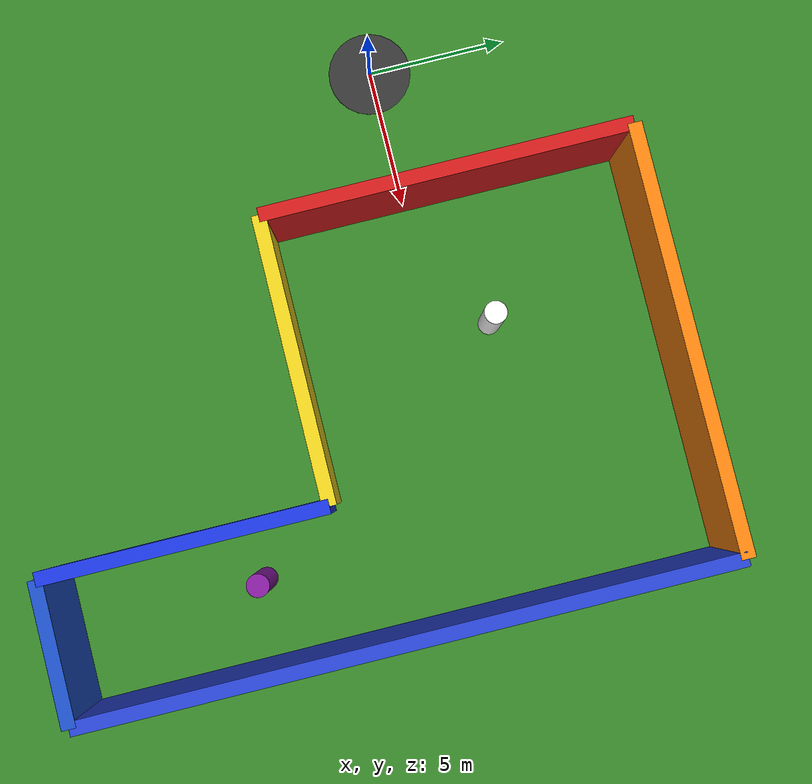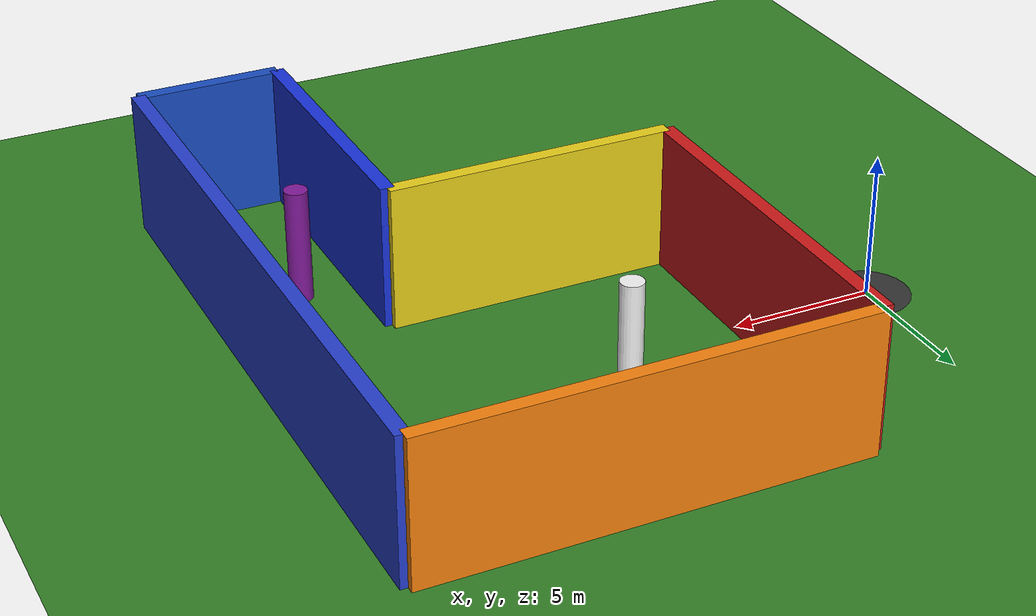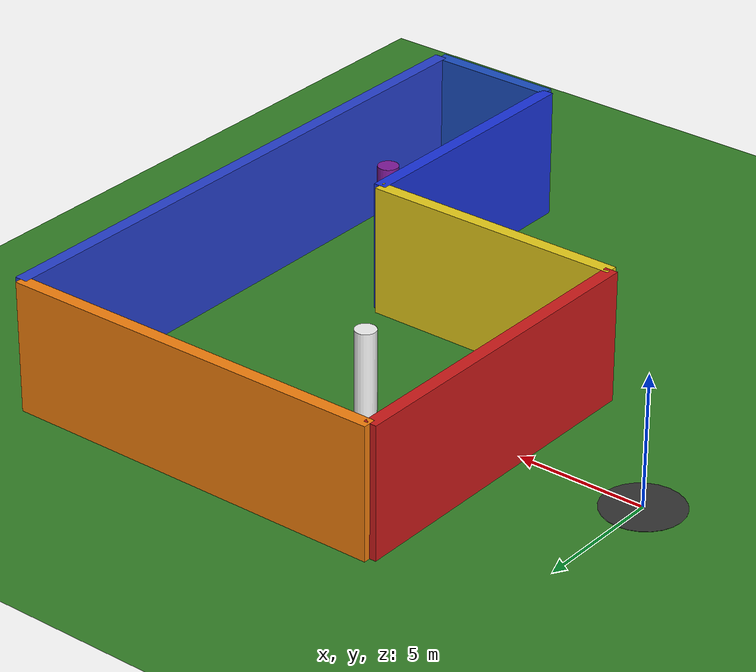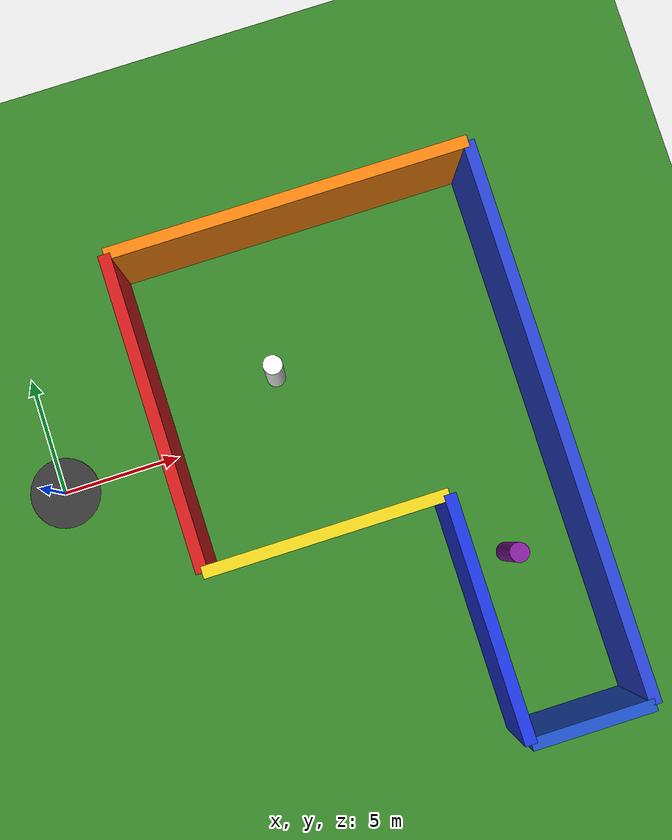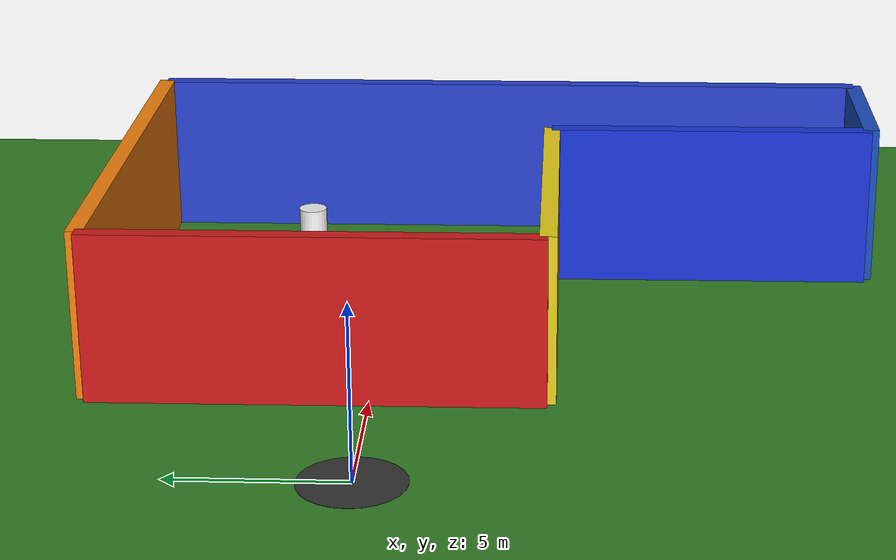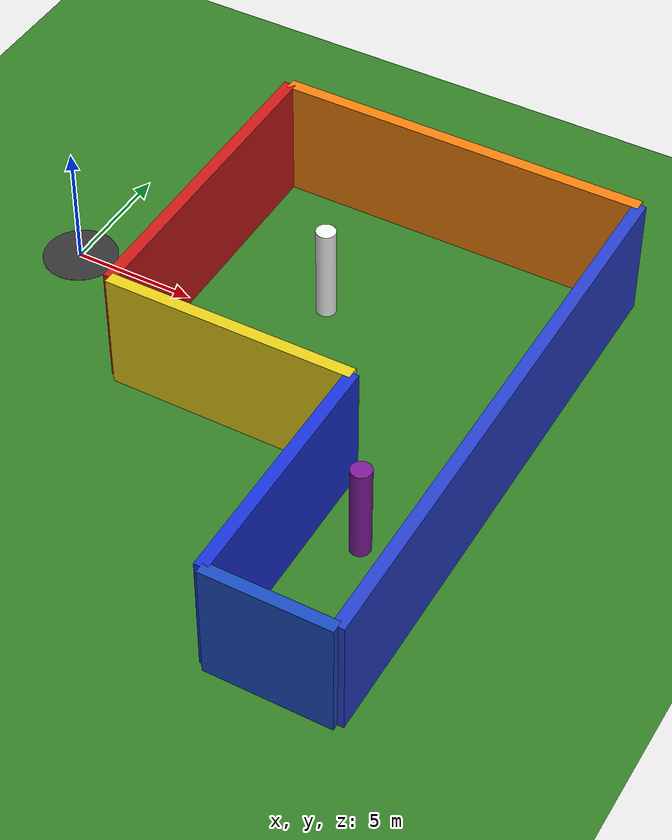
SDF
<sdf version="1.9">
 <world name="drone_course_85mm">
  <physics name="default_physics" default="true" type="bullet">
   <max_step_size>0.001</max_step_size>
   <real_time_factor>1.0</real_time_factor>
   <real_time_update_rate>250</real_time_update_rate>
  </physics>
  <plugin filename="gz-sim-physics-system" name="gz::sim::systems::Physics">
   <engine>
    <bullet>
     <solver><iters>100</iters><sor>1.0</sor></solver>
     <collision><bullet><grid_space><min_size>0.05</min_size></grid_space></bullet></collision>
    </bullet>
   </engine>
  </plugin>
  <plugin filename="gz-sim-user-commands-system" name="gz::sim::systems::UserCommands"/>
  <plugin filename="gz-sim-scene-broadcaster-system" name="gz::sim::systems::SceneBroadcaster"/>
  <plugin filename="gz-sim-sensors-system" name="gz::sim::systems::Sensors">
   <render_engine>ogre2</render_engine>
  </plugin>
  <plugin filename="gz-sim-imu-system" name="gz::sim::systems::Imu"/>
  <gravity>0 0 -9.8</gravity>
  <magnetic_field>6e-06 2.3e-05 -4.2e-05</magnetic_field>
  <atmosphere type="adiabatic"/>
  <scene>
   <sky><clouds><speed>4</speed></clouds></sky>
   <grid>false</grid>
   <ambient>0.6 0.6 0.6 1</ambient>
   <background>0.3 0.4 0.7 1</background>
   <shadows>true</shadows>
  </scene>
  <model name="ground_plane">
   <static>true</static>
   <link name="link">
    <collision name="collision">
     <geometry><plane><normal>0 0 1</normal><size>1 1</size></plane></geometry>
    </collision>
    <visual name="visual">
     <geometry><plane><normal>0 0 1</normal><size>200 200</size></plane></geometry>
     <material>
      <ambient>0.15 0.35 0.1 1</ambient>
      <diffuse>0.2 0.5 0.15 1</diffuse>
      <specular>0.05 0.05 0.05 1</specular>
     </material>
    </visual>
    <inertial>
     <mass>1</mass>
     <inertia><ixx>1</ixx><ixy>0</ixy><ixz>0</ixz><iyy>1</iyy><iyz>0</iyz><izz>1</izz></inertia>
    </inertial>
   </link>
  </model>
  <light name="sunUTC" type="directional">
   <pose>0 0 500 0 0 0</pose>
   <intensity>1</intensity>
   <direction>0.001 0.625 -0.78</direction>
   <diffuse>0.904 0.904 0.904 1</diffuse>
   <specular>0.271 0.271 0.271 1</specular>
   <attenuation><range>2000</range><linear>0</linear><constant>1</constant><quadratic>0</quadratic></attenuation>
  </light>
  <spherical_coordinates>
   <surface_model>EARTH_WGS84</surface_model>
   <world_frame_orientation>ENU</world_frame_orientation>
   <latitude_deg>47.397971057728974</latitude_deg>
   <longitude_deg>8.546163739800146</longitude_deg>
   <elevation>0</elevation>
  </spherical_coordinates>
  <model name="wall_left_1">
   <pose>5 1.5 2.5 0 0 0</pose>
   <static>true</static>
   <link name="link">
    <collision name="collision"><geometry><box><size>0.5 13 5</size></box></geometry></collision>
    <visual name="visual">
     <geometry><box><size>0.5 13 5</size></box></geometry>
     <material>
      <ambient>0.6 0.05 0.05 1</ambient>
      <diffuse>0.8 0.1 0.1 1</diffuse>
      <specular>0.3 0.1 0.1 1</specular>
     </material>
    </visual>
   </link>
  </model>
  <model name="wall_back">
   <pose>10 -5 2.5 0 0 0</pose>
   <static>true</static>
   <link name="link">
    <collision name="collision"><geometry><box><size>10 0.5 5</size></box></geometry></collision>
    <visual name="visual">
     <geometry><box><size>10 0.5 5</size></box></geometry>
     <material>
      <ambient>0.6 0.55 0.05 1</ambient>
      <diffuse>0.9 0.8 0.1 1</diffuse>
      <specular>0.3 0.3 0.1 1</specular>
     </material>
    </visual>
   </link>
  </model>
  <model name="wall_right_1">
   <pose>15 -10 2.5 0 0 0</pose>
   <static>true</static>
   <link name="link">
    <collision name="collision"><geometry><box><size>0.5 10 5</size></box></geometry></collision>
    <visual name="visual">
     <geometry><box><size>0.5 10 5</size></box></geometry>
     <material>
      <ambient>0.05 0.1 0.6 1</ambient>
      <diffuse>0.1 0.2 0.85 1</diffuse>
      <specular>0.1 0.1 0.4 1</specular>
     </material>
    </visual>
   </link>
  </model>
  <model name="wall_right_2">
   <pose>20 -3.5 2.5 0 0 0</pose>
   <static>true</static>
   <link name="link">
    <collision name="collision"><geometry><box><size>0.5 23 5</size></box></geometry></collision>
    <visual name="visual">
     <geometry><box><size>0.5 23 5</size></box></geometry>
     <material>
      <ambient>0.05 0.1 0.55 1</ambient>
      <diffuse>0.15 0.25 0.8 1</diffuse>
      <specular>0.1 0.1 0.35 1</specular>
     </material>
    </visual>
   </link>
  </model>
  <model name="wall_right_corner">
   <pose>17.5 -15 2.5 0 0 0</pose>
   <static>true</static>
   <link name="link">
    <collision name="collision"><geometry><box><size>5 0.5 5</size></box></geometry></collision>
    <visual name="visual">
     <geometry><box><size>5 0.5 5</size></box></geometry>
     <material>
      <ambient>0.05 0.15 0.5 1</ambient>
      <diffuse>0.1 0.3 0.75 1</diffuse>
      <specular>0.1 0.1 0.3 1</specular>
     </material>
    </visual>
   </link>
  </model>
  <model name="wall_top">
   <pose>12.5 8 2.5 0 0 0</pose>
   <static>true</static>
   <link name="link">
    <collision name="collision"><geometry><box><size>15 0.5 5</size></box></geometry></collision>
    <visual name="visual">
     <geometry><box><size>15 0.5 5</size></box></geometry>
     <material>
      <ambient>0.7 0.3 0.0 1</ambient>
      <diffuse>0.95 0.5 0.05 1</diffuse>
      <specular>0.3 0.2 0.05 1</specular>
     </material>
    </visual>
   </link>
  </model>
  <model name="pillar_1">
   <pose>10 2 2.0 0 0 0</pose>
   <static>true</static>
   <link name="link">
    <collision name="collision">
     <geometry><cylinder><radius>0.4</radius><length>4</length></cylinder></geometry>
    </collision>
    <visual name="visual">
     <geometry><cylinder><radius>0.4</radius><length>4</length></cylinder></geometry>
     <material>
      <ambient>0.8 0.8 0.8 1</ambient>
      <diffuse>0.95 0.95 0.95 1</diffuse>
      <specular>0.5 0.5 0.5 1</specular>
     </material>
    </visual>
   </link>
  </model>
  <model name="pillar_2">
   <pose>17 -8 2.0 0 0 0</pose>
   <static>true</static>
   <link name="link">
    <collision name="collision">
     <geometry><cylinder><radius>0.4</radius><length>4</length></cylinder></geometry>
    </collision>
    <visual name="visual">
     <geometry><cylinder><radius>0.4</radius><length>4</length></cylinder></geometry>
     <material>
      <ambient>0.3 0.05 0.4 1</ambient>
      <diffuse>0.5 0.1 0.6 1</diffuse>
      <specular>0.2 0.1 0.3 1</specular>
     </material>
    </visual>
   </link>
  </model>
  <model name="landing_pad">
   <pose>0 0 0.005 0 0 0</pose>
   <static>true</static>
   <link name="link">
    <visual name="visual">
     <geometry><cylinder><radius>1.5</radius><length>0.01</length></cylinder></geometry>
     <material>
      <ambient>0.15 0.15 0.15 1</ambient>
      <diffuse>0.2 0.2 0.2 1</diffuse>
      <specular>0.1 0.1 0.1 1</specular>
     </material>
    </visual>
   </link>
  </model>
 </world>
</sdf>
